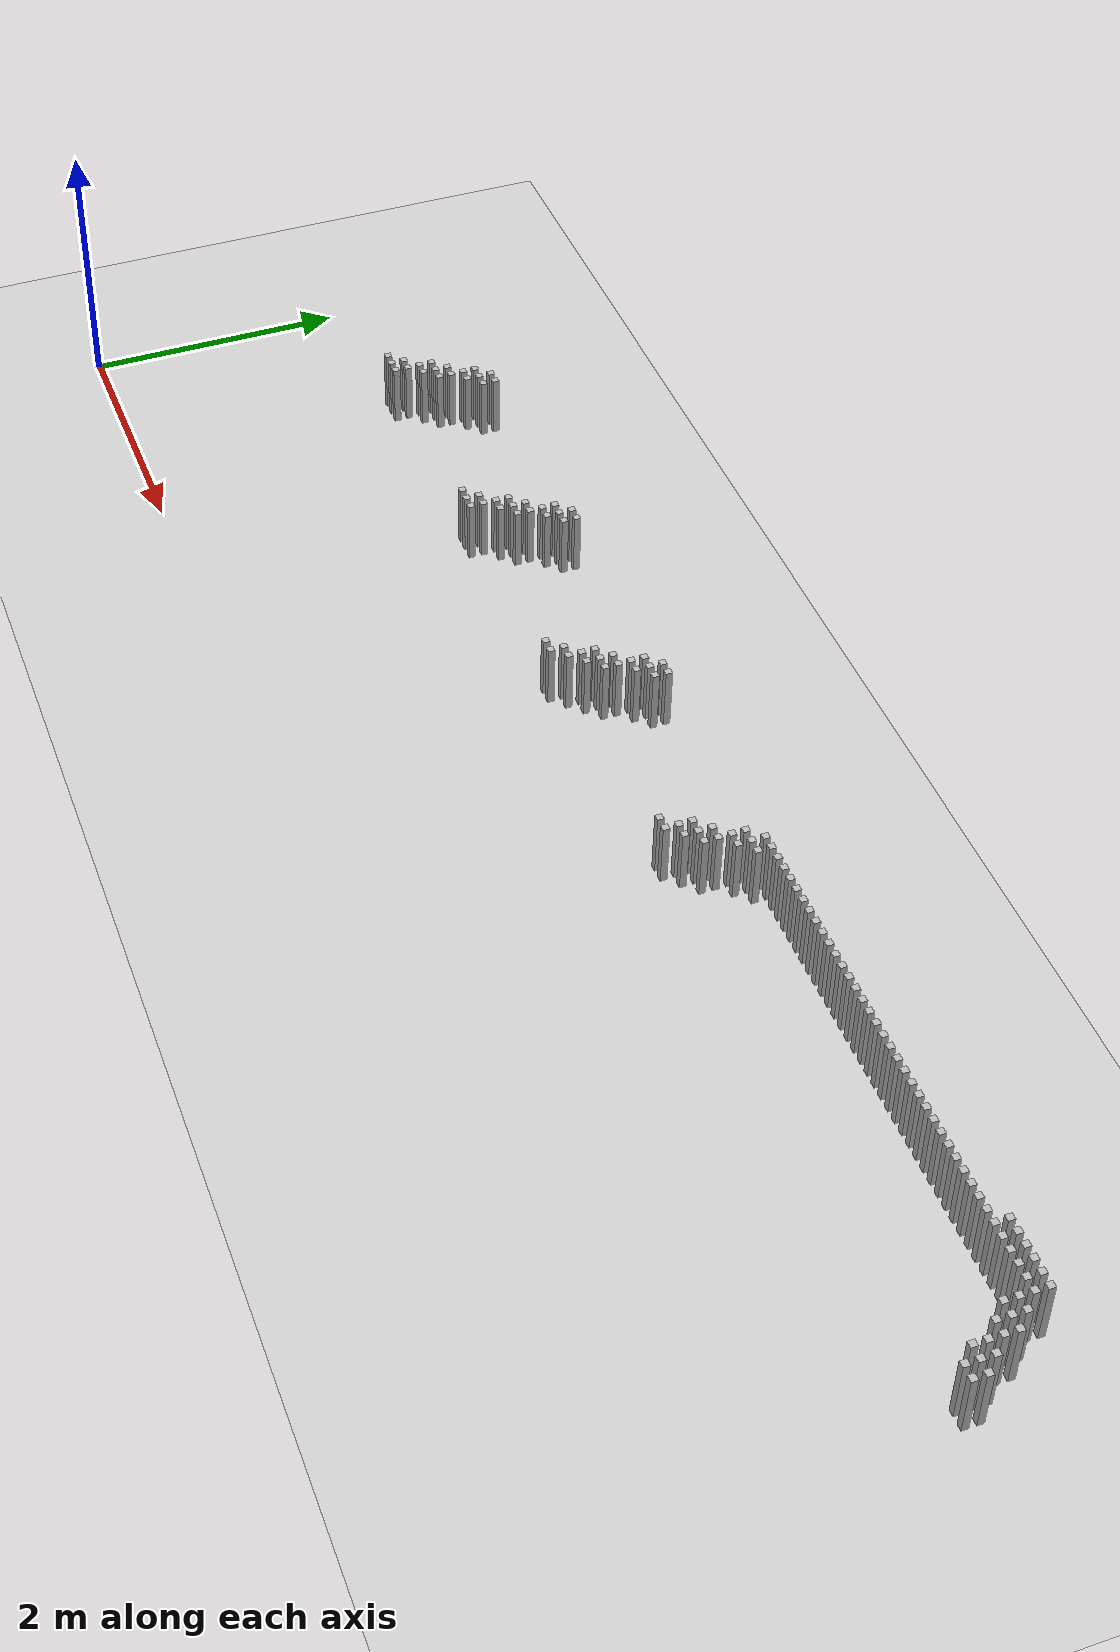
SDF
<sdf version="1.6">
 <world name="default_world">
  <include><uri>model://sun</uri></include>
  <include><uri>model://ground_plane</uri></include>
  <model name="wall_655">
   <static>true</static>
   <link name="link">
    <collision name="collision"><geometry><box><size>0.05 0.05 0.5</size></box></geometry></collision>
    <visual name="visual"><geometry><box><size>0.05 0.05 0.5</size></box></geometry></visual>
    <pose>10.5 2.9000000000000004 0.25 0 0 0</pose>
   </link>
  </model>
  <model name="wall_656">
   <static>true</static>
   <link name="link">
    <collision name="collision"><geometry><box><size>0.05 0.05 0.5</size></box></geometry></collision>
    <visual name="visual"><geometry><box><size>0.05 0.05 0.5</size></box></geometry></visual>
    <pose>10.600000000000001 2.9000000000000004 0.25 0 0 0</pose>
   </link>
  </model>
  <model name="wall_657">
   <static>true</static>
   <link name="link">
    <collision name="collision"><geometry><box><size>0.05 0.05 0.5</size></box></geometry></collision>
    <visual name="visual"><geometry><box><size>0.05 0.05 0.5</size></box></geometry></visual>
    <pose>10.700000000000001 2.9000000000000004 0.25 0 0 0</pose>
   </link>
  </model>
  <model name="wall_658">
   <static>true</static>
   <link name="link">
    <collision name="collision"><geometry><box><size>0.05 0.05 0.5</size></box></geometry></collision>
    <visual name="visual"><geometry><box><size>0.05 0.05 0.5</size></box></geometry></visual>
    <pose>10.8 2.9000000000000004 0.25 0 0 0</pose>
   </link>
  </model>
  <model name="wall_659">
   <static>true</static>
   <link name="link">
    <collision name="collision"><geometry><box><size>0.05 0.05 0.5</size></box></geometry></collision>
    <visual name="visual"><geometry><box><size>0.05 0.05 0.5</size></box></geometry></visual>
    <pose>10.9 2.9000000000000004 0.25 0 0 0</pose>
   </link>
  </model>
  <model name="wall_660">
   <static>true</static>
   <link name="link">
    <collision name="collision"><geometry><box><size>0.05 0.05 0.5</size></box></geometry></collision>
    <visual name="visual"><geometry><box><size>0.05 0.05 0.5</size></box></geometry></visual>
    <pose>11.0 2.9000000000000004 0.25 0 0 0</pose>
   </link>
  </model>
  <model name="wall_661">
   <static>true</static>
   <link name="link">
    <collision name="collision"><geometry><box><size>0.05 0.05 0.5</size></box></geometry></collision>
    <visual name="visual"><geometry><box><size>0.05 0.05 0.5</size></box></geometry></visual>
    <pose>1.8 2.8000000000000003 0.25 0 0 0</pose>
   </link>
  </model>
  <model name="wall_662">
   <static>true</static>
   <link name="link">
    <collision name="collision"><geometry><box><size>0.05 0.05 0.5</size></box></geometry></collision>
    <visual name="visual"><geometry><box><size>0.05 0.05 0.5</size></box></geometry></visual>
    <pose>1.9000000000000001 2.8000000000000003 0.25 0 0 0</pose>
   </link>
  </model>
  <model name="wall_663">
   <static>true</static>
   <link name="link">
    <collision name="collision"><geometry><box><size>0.05 0.05 0.5</size></box></geometry></collision>
    <visual name="visual"><geometry><box><size>0.05 0.05 0.5</size></box></geometry></visual>
    <pose>3.6 2.8000000000000003 0.25 0 0 0</pose>
   </link>
  </model>
  <model name="wall_664">
   <static>true</static>
   <link name="link">
    <collision name="collision"><geometry><box><size>0.05 0.05 0.5</size></box></geometry></collision>
    <visual name="visual"><geometry><box><size>0.05 0.05 0.5</size></box></geometry></visual>
    <pose>3.7 2.8000000000000003 0.25 0 0 0</pose>
   </link>
  </model>
  <model name="wall_665">
   <static>true</static>
   <link name="link">
    <collision name="collision"><geometry><box><size>0.05 0.05 0.5</size></box></geometry></collision>
    <visual name="visual"><geometry><box><size>0.05 0.05 0.5</size></box></geometry></visual>
    <pose>5.4 2.8000000000000003 0.25 0 0 0</pose>
   </link>
  </model>
  <model name="wall_666">
   <static>true</static>
   <link name="link">
    <collision name="collision"><geometry><box><size>0.05 0.05 0.5</size></box></geometry></collision>
    <visual name="visual"><geometry><box><size>0.05 0.05 0.5</size></box></geometry></visual>
    <pose>5.5 2.8000000000000003 0.25 0 0 0</pose>
   </link>
  </model>
  <model name="wall_667">
   <static>true</static>
   <link name="link">
    <collision name="collision"><geometry><box><size>0.05 0.05 0.5</size></box></geometry></collision>
    <visual name="visual"><geometry><box><size>0.05 0.05 0.5</size></box></geometry></visual>
    <pose>7.2 2.8000000000000003 0.25 0 0 0</pose>
   </link>
  </model>
  <model name="wall_668">
   <static>true</static>
   <link name="link">
    <collision name="collision"><geometry><box><size>0.05 0.05 0.5</size></box></geometry></collision>
    <visual name="visual"><geometry><box><size>0.05 0.05 0.5</size></box></geometry></visual>
    <pose>7.300000000000001 2.8000000000000003 0.25 0 0 0</pose>
   </link>
  </model>
  <model name="wall_669">
   <static>true</static>
   <link name="link">
    <collision name="collision"><geometry><box><size>0.05 0.05 0.5</size></box></geometry></collision>
    <visual name="visual"><geometry><box><size>0.05 0.05 0.5</size></box></geometry></visual>
    <pose>7.4 2.8000000000000003 0.25 0 0 0</pose>
   </link>
  </model>
  <model name="wall_670">
   <static>true</static>
   <link name="link">
    <collision name="collision"><geometry><box><size>0.05 0.05 0.5</size></box></geometry></collision>
    <visual name="visual"><geometry><box><size>0.05 0.05 0.5</size></box></geometry></visual>
    <pose>7.5 2.8000000000000003 0.25 0 0 0</pose>
   </link>
  </model>
  <model name="wall_671">
   <static>true</static>
   <link name="link">
    <collision name="collision"><geometry><box><size>0.05 0.05 0.5</size></box></geometry></collision>
    <visual name="visual"><geometry><box><size>0.05 0.05 0.5</size></box></geometry></visual>
    <pose>7.6000000000000005 2.8000000000000003 0.25 0 0 0</pose>
   </link>
  </model>
  <model name="wall_672">
   <static>true</static>
   <link name="link">
    <collision name="collision"><geometry><box><size>0.05 0.05 0.5</size></box></geometry></collision>
    <visual name="visual"><geometry><box><size>0.05 0.05 0.5</size></box></geometry></visual>
    <pose>7.7 2.8000000000000003 0.25 0 0 0</pose>
   </link>
  </model>
  <model name="wall_673">
   <static>true</static>
   <link name="link">
    <collision name="collision"><geometry><box><size>0.05 0.05 0.5</size></box></geometry></collision>
    <visual name="visual"><geometry><box><size>0.05 0.05 0.5</size></box></geometry></visual>
    <pose>7.800000000000001 2.8000000000000003 0.25 0 0 0</pose>
   </link>
  </model>
  <model name="wall_674">
   <static>true</static>
   <link name="link">
    <collision name="collision"><geometry><box><size>0.05 0.05 0.5</size></box></geometry></collision>
    <visual name="visual"><geometry><box><size>0.05 0.05 0.5</size></box></geometry></visual>
    <pose>7.9 2.8000000000000003 0.25 0 0 0</pose>
   </link>
  </model>
  <model name="wall_675">
   <static>true</static>
   <link name="link">
    <collision name="collision"><geometry><box><size>0.05 0.05 0.5</size></box></geometry></collision>
    <visual name="visual"><geometry><box><size>0.05 0.05 0.5</size></box></geometry></visual>
    <pose>8.0 2.8000000000000003 0.25 0 0 0</pose>
   </link>
  </model>
  <model name="wall_676">
   <static>true</static>
   <link name="link">
    <collision name="collision"><geometry><box><size>0.05 0.05 0.5</size></box></geometry></collision>
    <visual name="visual"><geometry><box><size>0.05 0.05 0.5</size></box></geometry></visual>
    <pose>8.1 2.8000000000000003 0.25 0 0 0</pose>
   </link>
  </model>
  <model name="wall_677">
   <static>true</static>
   <link name="link">
    <collision name="collision"><geometry><box><size>0.05 0.05 0.5</size></box></geometry></collision>
    <visual name="visual"><geometry><box><size>0.05 0.05 0.5</size></box></geometry></visual>
    <pose>8.200000000000001 2.8000000000000003 0.25 0 0 0</pose>
   </link>
  </model>
  <model name="wall_678">
   <static>true</static>
   <link name="link">
    <collision name="collision"><geometry><box><size>0.05 0.05 0.5</size></box></geometry></collision>
    <visual name="visual"><geometry><box><size>0.05 0.05 0.5</size></box></geometry></visual>
    <pose>8.3 2.8000000000000003 0.25 0 0 0</pose>
   </link>
  </model>
  <model name="wall_679">
   <static>true</static>
   <link name="link">
    <collision name="collision"><geometry><box><size>0.05 0.05 0.5</size></box></geometry></collision>
    <visual name="visual"><geometry><box><size>0.05 0.05 0.5</size></box></geometry></visual>
    <pose>8.4 2.8000000000000003 0.25 0 0 0</pose>
   </link>
  </model>
  <model name="wall_680">
   <static>true</static>
   <link name="link">
    <collision name="collision"><geometry><box><size>0.05 0.05 0.5</size></box></geometry></collision>
    <visual name="visual"><geometry><box><size>0.05 0.05 0.5</size></box></geometry></visual>
    <pose>8.5 2.8000000000000003 0.25 0 0 0</pose>
   </link>
  </model>
  <model name="wall_681">
   <static>true</static>
   <link name="link">
    <collision name="collision"><geometry><box><size>0.05 0.05 0.5</size></box></geometry></collision>
    <visual name="visual"><geometry><box><size>0.05 0.05 0.5</size></box></geometry></visual>
    <pose>8.6 2.8000000000000003 0.25 0 0 0</pose>
   </link>
  </model>
  <model name="wall_682">
   <static>true</static>
   <link name="link">
    <collision name="collision"><geometry><box><size>0.05 0.05 0.5</size></box></geometry></collision>
    <visual name="visual"><geometry><box><size>0.05 0.05 0.5</size></box></geometry></visual>
    <pose>8.700000000000001 2.8000000000000003 0.25 0 0 0</pose>
   </link>
  </model>
  <model name="wall_683">
   <static>true</static>
   <link name="link">
    <collision name="collision"><geometry><box><size>0.05 0.05 0.5</size></box></geometry></collision>
    <visual name="visual"><geometry><box><size>0.05 0.05 0.5</size></box></geometry></visual>
    <pose>8.8 2.8000000000000003 0.25 0 0 0</pose>
   </link>
  </model>
  <model name="wall_684">
   <static>true</static>
   <link name="link">
    <collision name="collision"><geometry><box><size>0.05 0.05 0.5</size></box></geometry></collision>
    <visual name="visual"><geometry><box><size>0.05 0.05 0.5</size></box></geometry></visual>
    <pose>8.9 2.8000000000000003 0.25 0 0 0</pose>
   </link>
  </model>
  <model name="wall_685">
   <static>true</static>
   <link name="link">
    <collision name="collision"><geometry><box><size>0.05 0.05 0.5</size></box></geometry></collision>
    <visual name="visual"><geometry><box><size>0.05 0.05 0.5</size></box></geometry></visual>
    <pose>9.0 2.8000000000000003 0.25 0 0 0</pose>
   </link>
  </model>
  <model name="wall_686">
   <static>true</static>
   <link name="link">
    <collision name="collision"><geometry><box><size>0.05 0.05 0.5</size></box></geometry></collision>
    <visual name="visual"><geometry><box><size>0.05 0.05 0.5</size></box></geometry></visual>
    <pose>9.1 2.8000000000000003 0.25 0 0 0</pose>
   </link>
  </model>
  <model name="wall_687">
   <static>true</static>
   <link name="link">
    <collision name="collision"><geometry><box><size>0.05 0.05 0.5</size></box></geometry></collision>
    <visual name="visual"><geometry><box><size>0.05 0.05 0.5</size></box></geometry></visual>
    <pose>9.200000000000001 2.8000000000000003 0.25 0 0 0</pose>
   </link>
  </model>
  <model name="wall_688">
   <static>true</static>
   <link name="link">
    <collision name="collision"><geometry><box><size>0.05 0.05 0.5</size></box></geometry></collision>
    <visual name="visual"><geometry><box><size>0.05 0.05 0.5</size></box></geometry></visual>
    <pose>9.3 2.8000000000000003 0.25 0 0 0</pose>
   </link>
  </model>
  <model name="wall_689">
   <static>true</static>
   <link name="link">
    <collision name="collision"><geometry><box><size>0.05 0.05 0.5</size></box></geometry></collision>
    <visual name="visual"><geometry><box><size>0.05 0.05 0.5</size></box></geometry></visual>
    <pose>9.4 2.8000000000000003 0.25 0 0 0</pose>
   </link>
  </model>
  <model name="wall_690">
   <static>true</static>
   <link name="link">
    <collision name="collision"><geometry><box><size>0.05 0.05 0.5</size></box></geometry></collision>
    <visual name="visual"><geometry><box><size>0.05 0.05 0.5</size></box></geometry></visual>
    <pose>9.5 2.8000000000000003 0.25 0 0 0</pose>
   </link>
  </model>
  <model name="wall_691">
   <static>true</static>
   <link name="link">
    <collision name="collision"><geometry><box><size>0.05 0.05 0.5</size></box></geometry></collision>
    <visual name="visual"><geometry><box><size>0.05 0.05 0.5</size></box></geometry></visual>
    <pose>9.600000000000001 2.8000000000000003 0.25 0 0 0</pose>
   </link>
  </model>
  <model name="wall_692">
   <static>true</static>
   <link name="link">
    <collision name="collision"><geometry><box><size>0.05 0.05 0.5</size></box></geometry></collision>
    <visual name="visual"><geometry><box><size>0.05 0.05 0.5</size></box></geometry></visual>
    <pose>9.700000000000001 2.8000000000000003 0.25 0 0 0</pose>
   </link>
  </model>
  <model name="wall_693">
   <static>true</static>
   <link name="link">
    <collision name="collision"><geometry><box><size>0.05 0.05 0.5</size></box></geometry></collision>
    <visual name="visual"><geometry><box><size>0.05 0.05 0.5</size></box></geometry></visual>
    <pose>9.8 2.8000000000000003 0.25 0 0 0</pose>
   </link>
  </model>
  <model name="wall_694">
   <static>true</static>
   <link name="link">
    <collision name="collision"><geometry><box><size>0.05 0.05 0.5</size></box></geometry></collision>
    <visual name="visual"><geometry><box><size>0.05 0.05 0.5</size></box></geometry></visual>
    <pose>9.9 2.8000000000000003 0.25 0 0 0</pose>
   </link>
  </model>
  <model name="wall_695">
   <static>true</static>
   <link name="link">
    <collision name="collision"><geometry><box><size>0.05 0.05 0.5</size></box></geometry></collision>
    <visual name="visual"><geometry><box><size>0.05 0.05 0.5</size></box></geometry></visual>
    <pose>10.0 2.8000000000000003 0.25 0 0 0</pose>
   </link>
  </model>
  <model name="wall_696">
   <static>true</static>
   <link name="link">
    <collision name="collision"><geometry><box><size>0.05 0.05 0.5</size></box></geometry></collision>
    <visual name="visual"><geometry><box><size>0.05 0.05 0.5</size></box></geometry></visual>
    <pose>10.100000000000001 2.8000000000000003 0.25 0 0 0</pose>
   </link>
  </model>
  <model name="wall_697">
   <static>true</static>
   <link name="link">
    <collision name="collision"><geometry><box><size>0.05 0.05 0.5</size></box></geometry></collision>
    <visual name="visual"><geometry><box><size>0.05 0.05 0.5</size></box></geometry></visual>
    <pose>10.200000000000001 2.8000000000000003 0.25 0 0 0</pose>
   </link>
  </model>
  <model name="wall_698">
   <static>true</static>
   <link name="link">
    <collision name="collision"><geometry><box><size>0.05 0.05 0.5</size></box></geometry></collision>
    <visual name="visual"><geometry><box><size>0.05 0.05 0.5</size></box></geometry></visual>
    <pose>10.3 2.8000000000000003 0.25 0 0 0</pose>
   </link>
  </model>
  <model name="wall_699">
   <static>true</static>
   <link name="link">
    <collision name="collision"><geometry><box><size>0.05 0.05 0.5</size></box></geometry></collision>
    <visual name="visual"><geometry><box><size>0.05 0.05 0.5</size></box></geometry></visual>
    <pose>10.4 2.8000000000000003 0.25 0 0 0</pose>
   </link>
  </model>
  <model name="wall_700">
   <static>true</static>
   <link name="link">
    <collision name="collision"><geometry><box><size>0.05 0.05 0.5</size></box></geometry></collision>
    <visual name="visual"><geometry><box><size>0.05 0.05 0.5</size></box></geometry></visual>
    <pose>10.5 2.8000000000000003 0.25 0 0 0</pose>
   </link>
  </model>
  <model name="wall_701">
   <static>true</static>
   <link name="link">
    <collision name="collision"><geometry><box><size>0.05 0.05 0.5</size></box></geometry></collision>
    <visual name="visual"><geometry><box><size>0.05 0.05 0.5</size></box></geometry></visual>
    <pose>10.600000000000001 2.8000000000000003 0.25 0 0 0</pose>
   </link>
  </model>
  <model name="wall_702">
   <static>true</static>
   <link name="link">
    <collision name="collision"><geometry><box><size>0.05 0.05 0.5</size></box></geometry></collision>
    <visual name="visual"><geometry><box><size>0.05 0.05 0.5</size></box></geometry></visual>
    <pose>10.700000000000001 2.8000000000000003 0.25 0 0 0</pose>
   </link>
  </model>
  <model name="wall_703">
   <static>true</static>
   <link name="link">
    <collision name="collision"><geometry><box><size>0.05 0.05 0.5</size></box></geometry></collision>
    <visual name="visual"><geometry><box><size>0.05 0.05 0.5</size></box></geometry></visual>
    <pose>10.8 2.8000000000000003 0.25 0 0 0</pose>
   </link>
  </model>
  <model name="wall_704">
   <static>true</static>
   <link name="link">
    <collision name="collision"><geometry><box><size>0.05 0.05 0.5</size></box></geometry></collision>
    <visual name="visual"><geometry><box><size>0.05 0.05 0.5</size></box></geometry></visual>
    <pose>10.9 2.8000000000000003 0.25 0 0 0</pose>
   </link>
  </model>
  <model name="wall_705">
   <static>true</static>
   <link name="link">
    <collision name="collision"><geometry><box><size>0.05 0.05 0.5</size></box></geometry></collision>
    <visual name="visual"><geometry><box><size>0.05 0.05 0.5</size></box></geometry></visual>
    <pose>11.0 2.8000000000000003 0.25 0 0 0</pose>
   </link>
  </model>
  <model name="wall_706">
   <static>true</static>
   <link name="link">
    <collision name="collision"><geometry><box><size>0.05 0.05 0.5</size></box></geometry></collision>
    <visual name="visual"><geometry><box><size>0.05 0.05 0.5</size></box></geometry></visual>
    <pose>1.7000000000000002 2.7 0.25 0 0 0</pose>
   </link>
  </model>
  <model name="wall_707">
   <static>true</static>
   <link name="link">
    <collision name="collision"><geometry><box><size>0.05 0.05 0.5</size></box></geometry></collision>
    <visual name="visual"><geometry><box><size>0.05 0.05 0.5</size></box></geometry></visual>
    <pose>1.8 2.7 0.25 0 0 0</pose>
   </link>
  </model>
  <model name="wall_708">
   <static>true</static>
   <link name="link">
    <collision name="collision"><geometry><box><size>0.05 0.05 0.5</size></box></geometry></collision>
    <visual name="visual"><geometry><box><size>0.05 0.05 0.5</size></box></geometry></visual>
    <pose>1.9000000000000001 2.7 0.25 0 0 0</pose>
   </link>
  </model>
  <model name="wall_709">
   <static>true</static>
   <link name="link">
    <collision name="collision"><geometry><box><size>0.05 0.05 0.5</size></box></geometry></collision>
    <visual name="visual"><geometry><box><size>0.05 0.05 0.5</size></box></geometry></visual>
    <pose>3.5 2.7 0.25 0 0 0</pose>
   </link>
  </model>
  <model name="wall_710">
   <static>true</static>
   <link name="link">
    <collision name="collision"><geometry><box><size>0.05 0.05 0.5</size></box></geometry></collision>
    <visual name="visual"><geometry><box><size>0.05 0.05 0.5</size></box></geometry></visual>
    <pose>3.6 2.7 0.25 0 0 0</pose>
   </link>
  </model>
  <model name="wall_711">
   <static>true</static>
   <link name="link">
    <collision name="collision"><geometry><box><size>0.05 0.05 0.5</size></box></geometry></collision>
    <visual name="visual"><geometry><box><size>0.05 0.05 0.5</size></box></geometry></visual>
    <pose>3.7 2.7 0.25 0 0 0</pose>
   </link>
  </model>
  <model name="wall_712">
   <static>true</static>
   <link name="link">
    <collision name="collision"><geometry><box><size>0.05 0.05 0.5</size></box></geometry></collision>
    <visual name="visual"><geometry><box><size>0.05 0.05 0.5</size></box></geometry></visual>
    <pose>5.300000000000001 2.7 0.25 0 0 0</pose>
   </link>
  </model>
  <model name="wall_713">
   <static>true</static>
   <link name="link">
    <collision name="collision"><geometry><box><size>0.05 0.05 0.5</size></box></geometry></collision>
    <visual name="visual"><geometry><box><size>0.05 0.05 0.5</size></box></geometry></visual>
    <pose>5.4 2.7 0.25 0 0 0</pose>
   </link>
  </model>
  <model name="wall_714">
   <static>true</static>
   <link name="link">
    <collision name="collision"><geometry><box><size>0.05 0.05 0.5</size></box></geometry></collision>
    <visual name="visual"><geometry><box><size>0.05 0.05 0.5</size></box></geometry></visual>
    <pose>5.5 2.7 0.25 0 0 0</pose>
   </link>
  </model>
  <model name="wall_715">
   <static>true</static>
   <link name="link">
    <collision name="collision"><geometry><box><size>0.05 0.05 0.5</size></box></geometry></collision>
    <visual name="visual"><geometry><box><size>0.05 0.05 0.5</size></box></geometry></visual>
    <pose>7.1000000000000005 2.7 0.25 0 0 0</pose>
   </link>
  </model>
  <model name="wall_716">
   <static>true</static>
   <link name="link">
    <collision name="collision"><geometry><box><size>0.05 0.05 0.5</size></box></geometry></collision>
    <visual name="visual"><geometry><box><size>0.05 0.05 0.5</size></box></geometry></visual>
    <pose>7.2 2.7 0.25 0 0 0</pose>
   </link>
  </model>
  <model name="wall_717">
   <static>true</static>
   <link name="link">
    <collision name="collision"><geometry><box><size>0.05 0.05 0.5</size></box></geometry></collision>
    <visual name="visual"><geometry><box><size>0.05 0.05 0.5</size></box></geometry></visual>
    <pose>7.300000000000001 2.7 0.25 0 0 0</pose>
   </link>
  </model>
  <model name="wall_718">
   <static>true</static>
   <link name="link">
    <collision name="collision"><geometry><box><size>0.05 0.05 0.5</size></box></geometry></collision>
    <visual name="visual"><geometry><box><size>0.05 0.05 0.5</size></box></geometry></visual>
    <pose>11.0 2.7 0.25 0 0 0</pose>
   </link>
  </model>
  <model name="wall_719">
   <static>true</static>
   <link name="link">
    <collision name="collision"><geometry><box><size>0.05 0.05 0.5</size></box></geometry></collision>
    <visual name="visual"><geometry><box><size>0.05 0.05 0.5</size></box></geometry></visual>
    <pose>11.100000000000001 2.7 0.25 0 0 0</pose>
   </link>
  </model>
  <model name="wall_720">
   <static>true</static>
   <link name="link">
    <collision name="collision"><geometry><box><size>0.05 0.05 0.5</size></box></geometry></collision>
    <visual name="visual"><geometry><box><size>0.05 0.05 0.5</size></box></geometry></visual>
    <pose>1.7000000000000002 2.6 0.25 0 0 0</pose>
   </link>
  </model>
  <model name="wall_721">
   <static>true</static>
   <link name="link">
    <collision name="collision"><geometry><box><size>0.05 0.05 0.5</size></box></geometry></collision>
    <visual name="visual"><geometry><box><size>0.05 0.05 0.5</size></box></geometry></visual>
    <pose>1.8 2.6 0.25 0 0 0</pose>
   </link>
  </model>
  <model name="wall_722">
   <static>true</static>
   <link name="link">
    <collision name="collision"><geometry><box><size>0.05 0.05 0.5</size></box></geometry></collision>
    <visual name="visual"><geometry><box><size>0.05 0.05 0.5</size></box></geometry></visual>
    <pose>3.5 2.6 0.25 0 0 0</pose>
   </link>
  </model>
  <model name="wall_723">
   <static>true</static>
   <link name="link">
    <collision name="collision"><geometry><box><size>0.05 0.05 0.5</size></box></geometry></collision>
    <visual name="visual"><geometry><box><size>0.05 0.05 0.5</size></box></geometry></visual>
    <pose>3.6 2.6 0.25 0 0 0</pose>
   </link>
  </model>
  <model name="wall_724">
   <static>true</static>
   <link name="link">
    <collision name="collision"><geometry><box><size>0.05 0.05 0.5</size></box></geometry></collision>
    <visual name="visual"><geometry><box><size>0.05 0.05 0.5</size></box></geometry></visual>
    <pose>5.300000000000001 2.6 0.25 0 0 0</pose>
   </link>
  </model>
  <model name="wall_725">
   <static>true</static>
   <link name="link">
    <collision name="collision"><geometry><box><size>0.05 0.05 0.5</size></box></geometry></collision>
    <visual name="visual"><geometry><box><size>0.05 0.05 0.5</size></box></geometry></visual>
    <pose>5.4 2.6 0.25 0 0 0</pose>
   </link>
  </model>
  <model name="wall_726">
   <static>true</static>
   <link name="link">
    <collision name="collision"><geometry><box><size>0.05 0.05 0.5</size></box></geometry></collision>
    <visual name="visual"><geometry><box><size>0.05 0.05 0.5</size></box></geometry></visual>
    <pose>7.1000000000000005 2.6 0.25 0 0 0</pose>
   </link>
  </model>
  <model name="wall_727">
   <static>true</static>
   <link name="link">
    <collision name="collision"><geometry><box><size>0.05 0.05 0.5</size></box></geometry></collision>
    <visual name="visual"><geometry><box><size>0.05 0.05 0.5</size></box></geometry></visual>
    <pose>7.2 2.6 0.25 0 0 0</pose>
   </link>
  </model>
  <model name="wall_728">
   <static>true</static>
   <link name="link">
    <collision name="collision"><geometry><box><size>0.05 0.05 0.5</size></box></geometry></collision>
    <visual name="visual"><geometry><box><size>0.05 0.05 0.5</size></box></geometry></visual>
    <pose>11.0 2.6 0.25 0 0 0</pose>
   </link>
  </model>
  <model name="wall_729">
   <static>true</static>
   <link name="link">
    <collision name="collision"><geometry><box><size>0.05 0.05 0.5</size></box></geometry></collision>
    <visual name="visual"><geometry><box><size>0.05 0.05 0.5</size></box></geometry></visual>
    <pose>11.100000000000001 2.6 0.25 0 0 0</pose>
   </link>
  </model>
  <model name="wall_730">
   <static>true</static>
   <link name="link">
    <collision name="collision"><geometry><box><size>0.05 0.05 0.5</size></box></geometry></collision>
    <visual name="visual"><geometry><box><size>0.05 0.05 0.5</size></box></geometry></visual>
    <pose>11.200000000000001 2.6 0.25 0 0 0</pose>
   </link>
  </model>
  <model name="wall_731">
   <static>true</static>
   <link name="link">
    <collision name="collision"><geometry><box><size>0.05 0.05 0.5</size></box></geometry></collision>
    <visual name="visual"><geometry><box><size>0.05 0.05 0.5</size></box></geometry></visual>
    <pose>1.6 2.5 0.25 0 0 0</pose>
   </link>
  </model>
  <model name="wall_732">
   <static>true</static>
   <link name="link">
    <collision name="collision"><geometry><box><size>0.05 0.05 0.5</size></box></geometry></collision>
    <visual name="visual"><geometry><box><size>0.05 0.05 0.5</size></box></geometry></visual>
    <pose>1.7000000000000002 2.5 0.25 0 0 0</pose>
   </link>
  </model>
  <model name="wall_733">
   <static>true</static>
   <link name="link">
    <collision name="collision"><geometry><box><size>0.05 0.05 0.5</size></box></geometry></collision>
    <visual name="visual"><geometry><box><size>0.05 0.05 0.5</size></box></geometry></visual>
    <pose>3.4000000000000004 2.5 0.25 0 0 0</pose>
   </link>
  </model>
  <model name="wall_734">
   <static>true</static>
   <link name="link">
    <collision name="collision"><geometry><box><size>0.05 0.05 0.5</size></box></geometry></collision>
    <visual name="visual"><geometry><box><size>0.05 0.05 0.5</size></box></geometry></visual>
    <pose>3.5 2.5 0.25 0 0 0</pose>
   </link>
  </model>
  <model name="wall_735">
   <static>true</static>
   <link name="link">
    <collision name="collision"><geometry><box><size>0.05 0.05 0.5</size></box></geometry></collision>
    <visual name="visual"><geometry><box><size>0.05 0.05 0.5</size></box></geometry></visual>
    <pose>5.2 2.5 0.25 0 0 0</pose>
   </link>
  </model>
  <model name="wall_736">
   <static>true</static>
   <link name="link">
    <collision name="collision"><geometry><box><size>0.05 0.05 0.5</size></box></geometry></collision>
    <visual name="visual"><geometry><box><size>0.05 0.05 0.5</size></box></geometry></visual>
    <pose>5.300000000000001 2.5 0.25 0 0 0</pose>
   </link>
  </model>
  <model name="wall_737">
   <static>true</static>
   <link name="link">
    <collision name="collision"><geometry><box><size>0.05 0.05 0.5</size></box></geometry></collision>
    <visual name="visual"><geometry><box><size>0.05 0.05 0.5</size></box></geometry></visual>
    <pose>7.0 2.5 0.25 0 0 0</pose>
   </link>
  </model>
  <model name="wall_738">
   <static>true</static>
   <link name="link">
    <collision name="collision"><geometry><box><size>0.05 0.05 0.5</size></box></geometry></collision>
    <visual name="visual"><geometry><box><size>0.05 0.05 0.5</size></box></geometry></visual>
    <pose>7.1000000000000005 2.5 0.25 0 0 0</pose>
   </link>
  </model>
  <model name="wall_739">
   <static>true</static>
   <link name="link">
    <collision name="collision"><geometry><box><size>0.05 0.05 0.5</size></box></geometry></collision>
    <visual name="visual"><geometry><box><size>0.05 0.05 0.5</size></box></geometry></visual>
    <pose>11.100000000000001 2.5 0.25 0 0 0</pose>
   </link>
  </model>
  <model name="wall_740">
   <static>true</static>
   <link name="link">
    <collision name="collision"><geometry><box><size>0.05 0.05 0.5</size></box></geometry></collision>
    <visual name="visual"><geometry><box><size>0.05 0.05 0.5</size></box></geometry></visual>
    <pose>11.200000000000001 2.5 0.25 0 0 0</pose>
   </link>
  </model>
  <model name="wall_741">
   <static>true</static>
   <link name="link">
    <collision name="collision"><geometry><box><size>0.05 0.05 0.5</size></box></geometry></collision>
    <visual name="visual"><geometry><box><size>0.05 0.05 0.5</size></box></geometry></visual>
    <pose>1.5 2.4000000000000004 0.25 0 0 0</pose>
   </link>
  </model>
  <model name="wall_742">
   <static>true</static>
   <link name="link">
    <collision name="collision"><geometry><box><size>0.05 0.05 0.5</size></box></geometry></collision>
    <visual name="visual"><geometry><box><size>0.05 0.05 0.5</size></box></geometry></visual>
    <pose>1.6 2.4000000000000004 0.25 0 0 0</pose>
   </link>
  </model>
  <model name="wall_743">
   <static>true</static>
   <link name="link">
    <collision name="collision"><geometry><box><size>0.05 0.05 0.5</size></box></geometry></collision>
    <visual name="visual"><geometry><box><size>0.05 0.05 0.5</size></box></geometry></visual>
    <pose>1.7000000000000002 2.4000000000000004 0.25 0 0 0</pose>
   </link>
  </model>
  <model name="wall_744">
   <static>true</static>
   <link name="link">
    <collision name="collision"><geometry><box><size>0.05 0.05 0.5</size></box></geometry></collision>
    <visual name="visual"><geometry><box><size>0.05 0.05 0.5</size></box></geometry></visual>
    <pose>3.3000000000000003 2.4000000000000004 0.25 0 0 0</pose>
   </link>
  </model>
  <model name="wall_745">
   <static>true</static>
   <link name="link">
    <collision name="collision"><geometry><box><size>0.05 0.05 0.5</size></box></geometry></collision>
    <visual name="visual"><geometry><box><size>0.05 0.05 0.5</size></box></geometry></visual>
    <pose>3.4000000000000004 2.4000000000000004 0.25 0 0 0</pose>
   </link>
  </model>
  <model name="wall_746">
   <static>true</static>
   <link name="link">
    <collision name="collision"><geometry><box><size>0.05 0.05 0.5</size></box></geometry></collision>
    <visual name="visual"><geometry><box><size>0.05 0.05 0.5</size></box></geometry></visual>
    <pose>3.5 2.4000000000000004 0.25 0 0 0</pose>
   </link>
  </model>
  <model name="wall_747">
   <static>true</static>
   <link name="link">
    <collision name="collision"><geometry><box><size>0.05 0.05 0.5</size></box></geometry></collision>
    <visual name="visual"><geometry><box><size>0.05 0.05 0.5</size></box></geometry></visual>
    <pose>5.1000000000000005 2.4000000000000004 0.25 0 0 0</pose>
   </link>
  </model>
  <model name="wall_748">
   <static>true</static>
   <link name="link">
    <collision name="collision"><geometry><box><size>0.05 0.05 0.5</size></box></geometry></collision>
    <visual name="visual"><geometry><box><size>0.05 0.05 0.5</size></box></geometry></visual>
    <pose>5.2 2.4000000000000004 0.25 0 0 0</pose>
   </link>
  </model>
  <model name="wall_749">
   <static>true</static>
   <link name="link">
    <collision name="collision"><geometry><box><size>0.05 0.05 0.5</size></box></geometry></collision>
    <visual name="visual"><geometry><box><size>0.05 0.05 0.5</size></box></geometry></visual>
    <pose>5.300000000000001 2.4000000000000004 0.25 0 0 0</pose>
   </link>
  </model>
  <model name="wall_750">
   <static>true</static>
   <link name="link">
    <collision name="collision"><geometry><box><size>0.05 0.05 0.5</size></box></geometry></collision>
    <visual name="visual"><geometry><box><size>0.05 0.05 0.5</size></box></geometry></visual>
    <pose>6.9 2.4000000000000004 0.25 0 0 0</pose>
   </link>
  </model>
  <model name="wall_751">
   <static>true</static>
   <link name="link">
    <collision name="collision"><geometry><box><size>0.05 0.05 0.5</size></box></geometry></collision>
    <visual name="visual"><geometry><box><size>0.05 0.05 0.5</size></box></geometry></visual>
    <pose>7.0 2.4000000000000004 0.25 0 0 0</pose>
   </link>
  </model>
  <model name="wall_752">
   <static>true</static>
   <link name="link">
    <collision name="collision"><geometry><box><size>0.05 0.05 0.5</size></box></geometry></collision>
    <visual name="visual"><geometry><box><size>0.05 0.05 0.5</size></box></geometry></visual>
    <pose>7.1000000000000005 2.4000000000000004 0.25 0 0 0</pose>
   </link>
  </model>
  <model name="wall_753">
   <static>true</static>
   <link name="link">
    <collision name="collision"><geometry><box><size>0.05 0.05 0.5</size></box></geometry></collision>
    <visual name="visual"><geometry><box><size>0.05 0.05 0.5</size></box></geometry></visual>
    <pose>11.200000000000001 2.4000000000000004 0.25 0 0 0</pose>
   </link>
  </model>
  <model name="wall_754">
   <static>true</static>
   <link name="link">
    <collision name="collision"><geometry><box><size>0.05 0.05 0.5</size></box></geometry></collision>
    <visual name="visual"><geometry><box><size>0.05 0.05 0.5</size></box></geometry></visual>
    <pose>11.3 2.4000000000000004 0.25 0 0 0</pose>
   </link>
  </model>
  <model name="wall_755">
   <static>true</static>
   <link name="link">
    <collision name="collision"><geometry><box><size>0.05 0.05 0.5</size></box></geometry></collision>
    <visual name="visual"><geometry><box><size>0.05 0.05 0.5</size></box></geometry></visual>
    <pose>1.5 2.3000000000000003 0.25 0 0 0</pose>
   </link>
  </model>
  <model name="wall_756">
   <static>true</static>
   <link name="link">
    <collision name="collision"><geometry><box><size>0.05 0.05 0.5</size></box></geometry></collision>
    <visual name="visual"><geometry><box><size>0.05 0.05 0.5</size></box></geometry></visual>
    <pose>1.6 2.3000000000000003 0.25 0 0 0</pose>
   </link>
  </model>
  <model name="wall_757">
   <static>true</static>
   <link name="link">
    <collision name="collision"><geometry><box><size>0.05 0.05 0.5</size></box></geometry></collision>
    <visual name="visual"><geometry><box><size>0.05 0.05 0.5</size></box></geometry></visual>
    <pose>3.3000000000000003 2.3000000000000003 0.25 0 0 0</pose>
   </link>
  </model>
  <model name="wall_758">
   <static>true</static>
   <link name="link">
    <collision name="collision"><geometry><box><size>0.05 0.05 0.5</size></box></geometry></collision>
    <visual name="visual"><geometry><box><size>0.05 0.05 0.5</size></box></geometry></visual>
    <pose>3.4000000000000004 2.3000000000000003 0.25 0 0 0</pose>
   </link>
  </model>
  <model name="wall_759">
   <static>true</static>
   <link name="link">
    <collision name="collision"><geometry><box><size>0.05 0.05 0.5</size></box></geometry></collision>
    <visual name="visual"><geometry><box><size>0.05 0.05 0.5</size></box></geometry></visual>
    <pose>5.1000000000000005 2.3000000000000003 0.25 0 0 0</pose>
   </link>
  </model>
  <model name="wall_760">
   <static>true</static>
   <link name="link">
    <collision name="collision"><geometry><box><size>0.05 0.05 0.5</size></box></geometry></collision>
    <visual name="visual"><geometry><box><size>0.05 0.05 0.5</size></box></geometry></visual>
    <pose>5.2 2.3000000000000003 0.25 0 0 0</pose>
   </link>
  </model>
  <model name="wall_761">
   <static>true</static>
   <link name="link">
    <collision name="collision"><geometry><box><size>0.05 0.05 0.5</size></box></geometry></collision>
    <visual name="visual"><geometry><box><size>0.05 0.05 0.5</size></box></geometry></visual>
    <pose>6.9 2.3000000000000003 0.25 0 0 0</pose>
   </link>
  </model>
  <model name="wall_762">
   <static>true</static>
   <link name="link">
    <collision name="collision"><geometry><box><size>0.05 0.05 0.5</size></box></geometry></collision>
    <visual name="visual"><geometry><box><size>0.05 0.05 0.5</size></box></geometry></visual>
    <pose>7.0 2.3000000000000003 0.25 0 0 0</pose>
   </link>
  </model>
  <model name="wall_763">
   <static>true</static>
   <link name="link">
    <collision name="collision"><geometry><box><size>0.05 0.05 0.5</size></box></geometry></collision>
    <visual name="visual"><geometry><box><size>0.05 0.05 0.5</size></box></geometry></visual>
    <pose>11.200000000000001 2.3000000000000003 0.25 0 0 0</pose>
   </link>
  </model>
  <model name="wall_764">
   <static>true</static>
   <link name="link">
    <collision name="collision"><geometry><box><size>0.05 0.05 0.5</size></box></geometry></collision>
    <visual name="visual"><geometry><box><size>0.05 0.05 0.5</size></box></geometry></visual>
    <pose>11.3 2.3000000000000003 0.25 0 0 0</pose>
   </link>
  </model>
  <model name="wall_765">
   <static>true</static>
   <link name="link">
    <collision name="collision"><geometry><box><size>0.05 0.05 0.5</size></box></geometry></collision>
    <visual name="visual"><geometry><box><size>0.05 0.05 0.5</size></box></geometry></visual>
    <pose>11.4 2.3000000000000003 0.25 0 0 0</pose>
   </link>
  </model>
  <model name="wall_766">
   <static>true</static>
   <link name="link">
    <collision name="collision"><geometry><box><size>0.05 0.05 0.5</size></box></geometry></collision>
    <visual name="visual"><geometry><box><size>0.05 0.05 0.5</size></box></geometry></visual>
    <pose>1.4000000000000001 2.2 0.25 0 0 0</pose>
   </link>
  </model>
  <model name="wall_767">
   <static>true</static>
   <link name="link">
    <collision name="collision"><geometry><box><size>0.05 0.05 0.5</size></box></geometry></collision>
    <visual name="visual"><geometry><box><size>0.05 0.05 0.5</size></box></geometry></visual>
    <pose>1.5 2.2 0.25 0 0 0</pose>
   </link>
  </model>
  <model name="wall_768">
   <static>true</static>
   <link name="link">
    <collision name="collision"><geometry><box><size>0.05 0.05 0.5</size></box></geometry></collision>
    <visual name="visual"><geometry><box><size>0.05 0.05 0.5</size></box></geometry></visual>
    <pose>3.2 2.2 0.25 0 0 0</pose>
   </link>
  </model>
  <model name="wall_769">
   <static>true</static>
   <link name="link">
    <collision name="collision"><geometry><box><size>0.05 0.05 0.5</size></box></geometry></collision>
    <visual name="visual"><geometry><box><size>0.05 0.05 0.5</size></box></geometry></visual>
    <pose>3.3000000000000003 2.2 0.25 0 0 0</pose>
   </link>
  </model>
  <model name="wall_770">
   <static>true</static>
   <link name="link">
    <collision name="collision"><geometry><box><size>0.05 0.05 0.5</size></box></geometry></collision>
    <visual name="visual"><geometry><box><size>0.05 0.05 0.5</size></box></geometry></visual>
    <pose>5.0 2.2 0.25 0 0 0</pose>
   </link>
  </model>
  <model name="wall_771">
   <static>true</static>
   <link name="link">
    <collision name="collision"><geometry><box><size>0.05 0.05 0.5</size></box></geometry></collision>
    <visual name="visual"><geometry><box><size>0.05 0.05 0.5</size></box></geometry></visual>
    <pose>5.1000000000000005 2.2 0.25 0 0 0</pose>
   </link>
  </model>
  <model name="wall_772">
   <static>true</static>
   <link name="link">
    <collision name="collision"><geometry><box><size>0.05 0.05 0.5</size></box></geometry></collision>
    <visual name="visual"><geometry><box><size>0.05 0.05 0.5</size></box></geometry></visual>
    <pose>6.800000000000001 2.2 0.25 0 0 0</pose>
   </link>
  </model>
  <model name="wall_773">
   <static>true</static>
   <link name="link">
    <collision name="collision"><geometry><box><size>0.05 0.05 0.5</size></box></geometry></collision>
    <visual name="visual"><geometry><box><size>0.05 0.05 0.5</size></box></geometry></visual>
    <pose>6.9 2.2 0.25 0 0 0</pose>
   </link>
  </model>
  <model name="wall_774">
   <static>true</static>
   <link name="link">
    <collision name="collision"><geometry><box><size>0.05 0.05 0.5</size></box></geometry></collision>
    <visual name="visual"><geometry><box><size>0.05 0.05 0.5</size></box></geometry></visual>
    <pose>11.3 2.2 0.25 0 0 0</pose>
   </link>
  </model>
  <model name="wall_775">
   <static>true</static>
   <link name="link">
    <collision name="collision"><geometry><box><size>0.05 0.05 0.5</size></box></geometry></collision>
    <visual name="visual"><geometry><box><size>0.05 0.05 0.5</size></box></geometry></visual>
    <pose>11.4 2.2 0.25 0 0 0</pose>
   </link>
  </model>
  <model name="wall_776">
   <static>true</static>
   <link name="link">
    <collision name="collision"><geometry><box><size>0.05 0.05 0.5</size></box></geometry></collision>
    <visual name="visual"><geometry><box><size>0.05 0.05 0.5</size></box></geometry></visual>
    <pose>1.3 2.1 0.25 0 0 0</pose>
   </link>
  </model>
  <model name="wall_777">
   <static>true</static>
   <link name="link">
    <collision name="collision"><geometry><box><size>0.05 0.05 0.5</size></box></geometry></collision>
    <visual name="visual"><geometry><box><size>0.05 0.05 0.5</size></box></geometry></visual>
    <pose>1.4000000000000001 2.1 0.25 0 0 0</pose>
   </link>
  </model>
  <model name="wall_778">
   <static>true</static>
   <link name="link">
    <collision name="collision"><geometry><box><size>0.05 0.05 0.5</size></box></geometry></collision>
    <visual name="visual"><geometry><box><size>0.05 0.05 0.5</size></box></geometry></visual>
    <pose>1.5 2.1 0.25 0 0 0</pose>
   </link>
  </model>
  <model name="wall_779">
   <static>true</static>
   <link name="link">
    <collision name="collision"><geometry><box><size>0.05 0.05 0.5</size></box></geometry></collision>
    <visual name="visual"><geometry><box><size>0.05 0.05 0.5</size></box></geometry></visual>
    <pose>3.1 2.1 0.25 0 0 0</pose>
   </link>
  </model>
  <model name="wall_780">
   <static>true</static>
   <link name="link">
    <collision name="collision"><geometry><box><size>0.05 0.05 0.5</size></box></geometry></collision>
    <visual name="visual"><geometry><box><size>0.05 0.05 0.5</size></box></geometry></visual>
    <pose>3.2 2.1 0.25 0 0 0</pose>
   </link>
  </model>
  <model name="wall_781">
   <static>true</static>
   <link name="link">
    <collision name="collision"><geometry><box><size>0.05 0.05 0.5</size></box></geometry></collision>
    <visual name="visual"><geometry><box><size>0.05 0.05 0.5</size></box></geometry></visual>
    <pose>3.3000000000000003 2.1 0.25 0 0 0</pose>
   </link>
  </model>
  <model name="wall_782">
   <static>true</static>
   <link name="link">
    <collision name="collision"><geometry><box><size>0.05 0.05 0.5</size></box></geometry></collision>
    <visual name="visual"><geometry><box><size>0.05 0.05 0.5</size></box></geometry></visual>
    <pose>4.9 2.1 0.25 0 0 0</pose>
   </link>
  </model>
  <model name="wall_783">
   <static>true</static>
   <link name="link">
    <collision name="collision"><geometry><box><size>0.05 0.05 0.5</size></box></geometry></collision>
    <visual name="visual"><geometry><box><size>0.05 0.05 0.5</size></box></geometry></visual>
    <pose>5.0 2.1 0.25 0 0 0</pose>
   </link>
  </model>
 </world>
</sdf>
